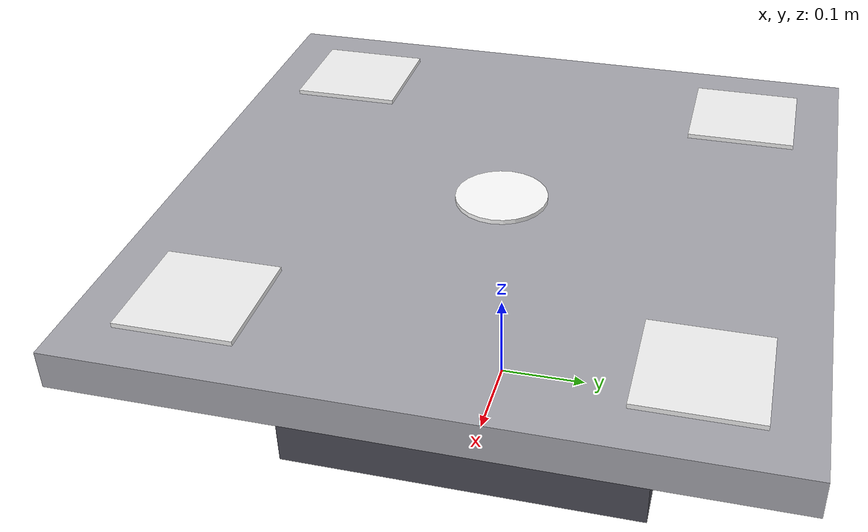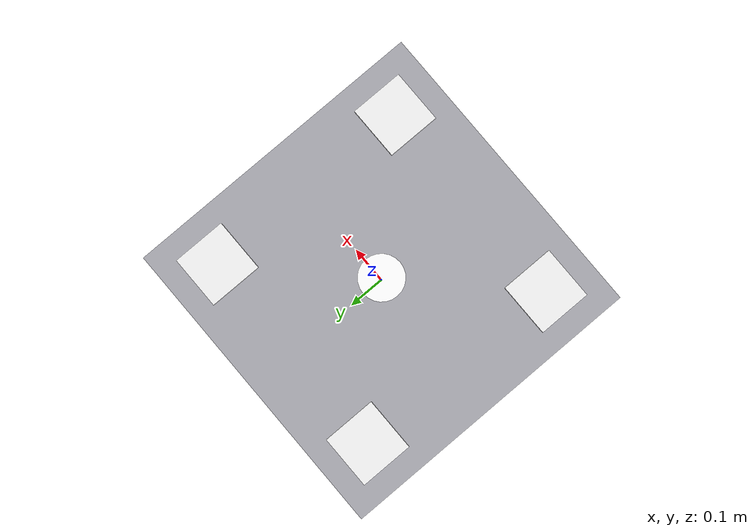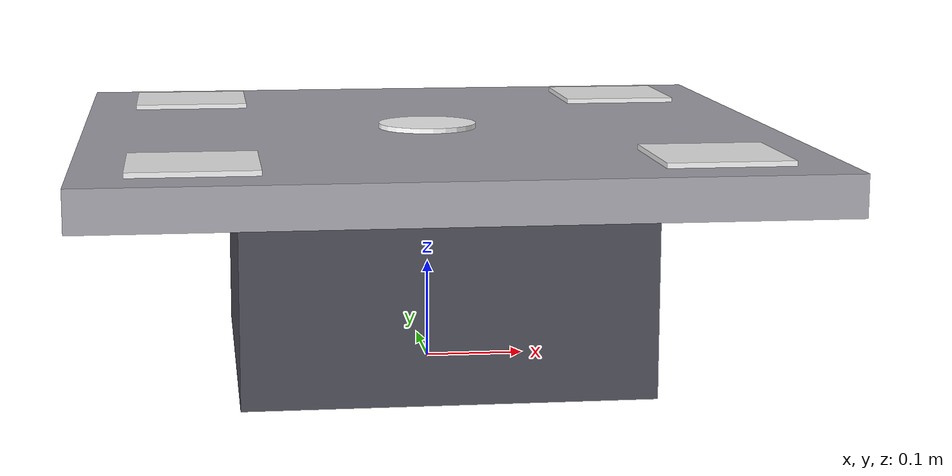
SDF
<?xml version="1.0"?>
<sdf version="1.9">
  <!-- RM2027 机库简化模型（静态）。
       平台顶面 z=0.24m，低于 A* 占据带下限 0.35m，不进入占据栅格（可飞越）。
       真实机库内部 300x300x200mm 收纳 4 机，此处简化为 0.70x0.70m 平台 + 4 个槽位标记，
       中心白色标记供后续 D430i 视觉伺服对准。 -->
  <model name="hangar">
    <static>true</static>

    <link name="base">
      <collision name="base_col">
        <pose>0 0 0.10 0 0 0</pose>
        <geometry><box><size>0.40 0.40 0.20</size></box></geometry>
      </collision>
      <visual name="base_vis">
        <pose>0 0 0.10 0 0 0</pose>
        <geometry><box><size>0.40 0.40 0.20</size></box></geometry>
        <material>
          <ambient>0.25 0.25 0.28 1</ambient>
          <diffuse>0.30 0.30 0.34 1</diffuse>
        </material>
      </visual>

      <collision name="platform_col">
        <pose>0 0 0.22 0 0 0</pose>
        <geometry><box><size>0.70 0.70 0.04</size></box></geometry>
      </collision>
      <visual name="platform_vis">
        <pose>0 0 0.22 0 0 0</pose>
        <geometry><box><size>0.70 0.70 0.04</size></box></geometry>
        <material>
          <ambient>0.55 0.55 0.58 1</ambient>
          <diffuse>0.65 0.65 0.68 1</diffuse>
        </material>
      </visual>

      <!-- 4 个降落槽位标记（纯视觉） -->
      <visual name="slot_1">
        <pose>0.24 0.24 0.2425 0 0 0</pose>
        <geometry><box><size>0.12 0.12 0.005</size></box></geometry>
        <material><ambient>0.9 0.9 0.9 1</ambient><diffuse>0.95 0.95 0.95 1</diffuse></material>
      </visual>
      <visual name="slot_2">
        <pose>-0.24 0.24 0.2425 0 0 0</pose>
        <geometry><box><size>0.12 0.12 0.005</size></box></geometry>
        <material><ambient>0.9 0.9 0.9 1</ambient><diffuse>0.95 0.95 0.95 1</diffuse></material>
      </visual>
      <visual name="slot_3">
        <pose>0.24 -0.24 0.2425 0 0 0</pose>
        <geometry><box><size>0.12 0.12 0.005</size></box></geometry>
        <material><ambient>0.9 0.9 0.9 1</ambient><diffuse>0.95 0.95 0.95 1</diffuse></material>
      </visual>
      <visual name="slot_4">
        <pose>-0.24 -0.24 0.2425 0 0 0</pose>
        <geometry><box><size>0.12 0.12 0.005</size></box></geometry>
        <material><ambient>0.9 0.9 0.9 1</ambient><diffuse>0.95 0.95 0.95 1</diffuse></material>
      </visual>
      <!-- 中心对位标记（纯视觉，供视觉伺服） -->
      <visual name="center_marker">
        <pose>0 0 0.2425 0 0 0</pose>
        <geometry><cylinder><radius>0.05</radius><length>0.005</length></cylinder></geometry>
        <material><ambient>1 1 1 1</ambient><diffuse>1 1 1 1</diffuse></material>
      </visual>
    </link>
  </model>
</sdf>
